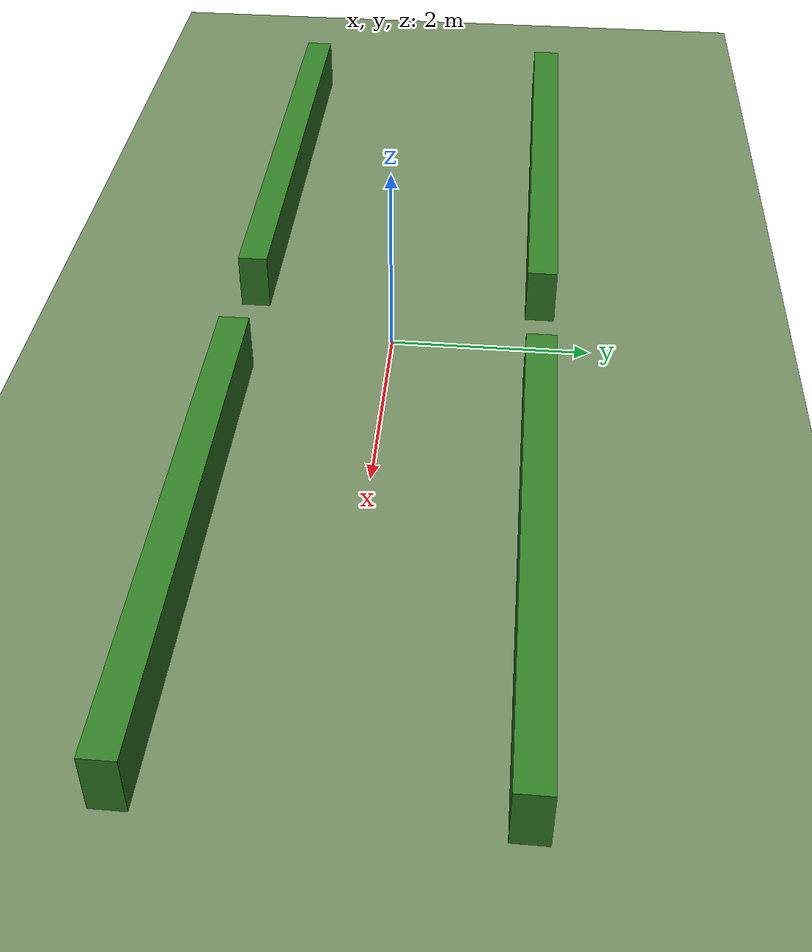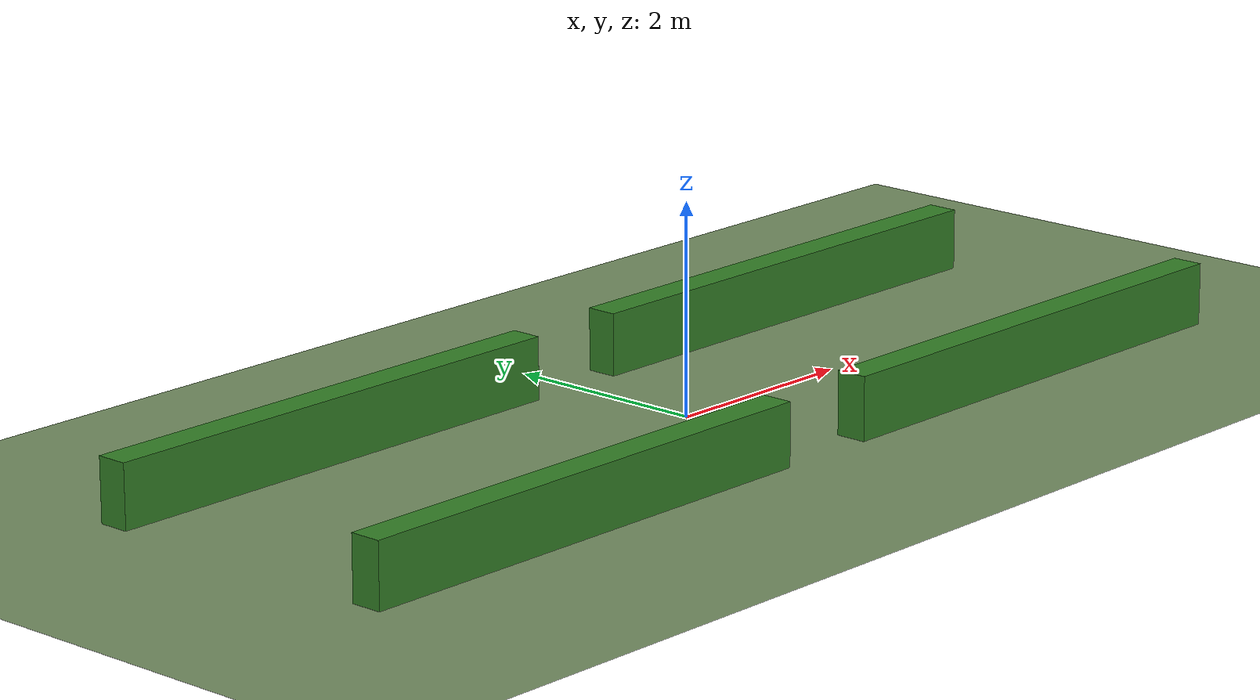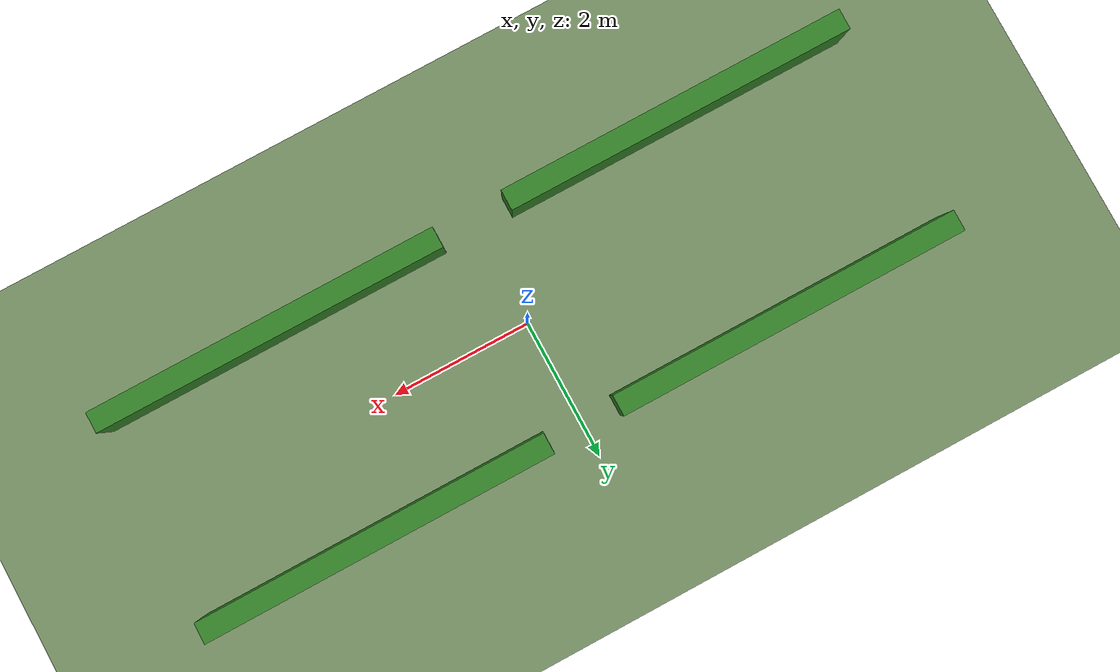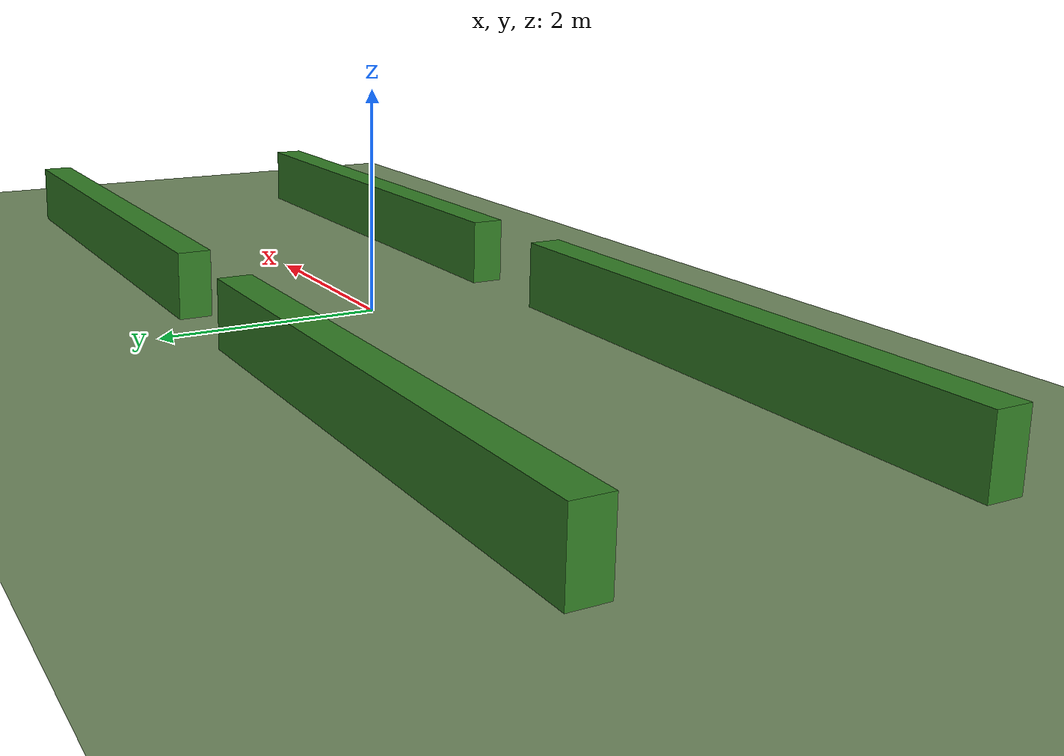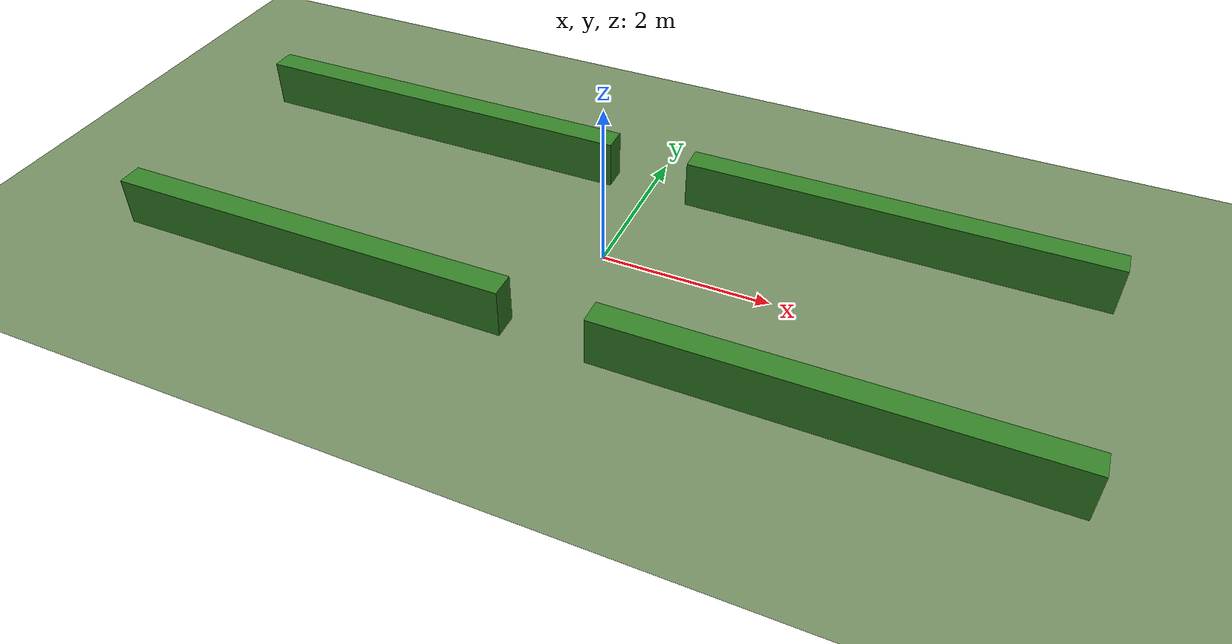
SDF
<?xml version="1.0" ?>
<sdf version="1.6">
  <world name="greenhouse">

    <!-- Fast, deterministic physics for CI. -->
    <physics name="default_physics" default="true" type="ode">
      <max_step_size>0.004</max_step_size>
      <real_time_factor>1.0</real_time_factor>
      <real_time_update_rate>250</real_time_update_rate>
    </physics>

    <scene>
      <ambient>0.5 0.5 0.5 1</ambient>
      <background>0.75 0.85 0.9 1</background>
      <shadows>0</shadows>
    </scene>

    <!-- Sun (inline directional light, no model:// fetch). -->
    <light name="sun" type="directional">
      <cast_shadows>0</cast_shadows>
      <pose>0 0 10 0 0 0</pose>
      <diffuse>0.8 0.8 0.8 1</diffuse>
      <specular>0.2 0.2 0.2 1</specular>
      <attenuation>
        <range>1000</range>
        <constant>0.9</constant>
        <linear>0.01</linear>
        <quadratic>0.001</quadratic>
      </attenuation>
      <direction>-0.5 0.1 -0.9</direction>
    </light>

    <!-- Ground plane (inline, no model:// fetch). -->
    <model name="ground_plane">
      <static>1</static>
      <link name="link">
        <collision name="collision">
          <geometry>
            <plane>
              <normal>0 0 1</normal>
              <size>100 100</size>
            </plane>
          </geometry>
          <surface>
            <friction>
              <ode>
                <mu>100</mu>
                <mu2>50</mu2>
              </ode>
            </friction>
          </surface>
        </collision>
        <visual name="visual">
          <cast_shadows>0</cast_shadows>
          <geometry>
            <plane>
              <normal>0 0 1</normal>
              <size>100 100</size>
            </plane>
          </geometry>
          <material>
            <ambient>0.35 0.45 0.30 1</ambient>
            <diffuse>0.45 0.55 0.38 1</diffuse>
          </material>
        </visual>
      </link>
    </model>

    <model name="crop_row_left_front">
      <static>1</static>
      <pose>3.0 1.5 0.3 0 0 0</pose>
      <link name="link">
        <collision name="collision">
          <geometry><box><size>5.0 0.3 0.6</size></box></geometry>
        </collision>
        <visual name="visual">
          <geometry><box><size>5.0 0.3 0.6</size></box></geometry>
          <material>
            <ambient>0.15 0.35 0.10 1</ambient>
            <diffuse>0.20 0.50 0.15 1</diffuse>
          </material>
        </visual>
      </link>
    </model>

    <model name="crop_row_right_front">
      <static>1</static>
      <pose>3.0 -1.5 0.3 0 0 0</pose>
      <link name="link">
        <collision name="collision">
          <geometry><box><size>5.0 0.3 0.6</size></box></geometry>
        </collision>
        <visual name="visual">
          <geometry><box><size>5.0 0.3 0.6</size></box></geometry>
          <material>
            <ambient>0.15 0.35 0.10 1</ambient>
            <diffuse>0.20 0.50 0.15 1</diffuse>
          </material>
        </visual>
      </link>
    </model>

    <model name="crop_row_left_back">
      <static>1</static>
      <pose>-3.0 1.5 0.3 0 0 0</pose>
      <link name="link">
        <collision name="collision">
          <geometry><box><size>5.0 0.3 0.6</size></box></geometry>
        </collision>
        <visual name="visual">
          <geometry><box><size>5.0 0.3 0.6</size></box></geometry>
          <material>
            <ambient>0.15 0.35 0.10 1</ambient>
            <diffuse>0.20 0.50 0.15 1</diffuse>
          </material>
        </visual>
      </link>
    </model>

    <model name="crop_row_right_back">
      <static>1</static>
      <pose>-3.0 -1.5 0.3 0 0 0</pose>
      <link name="link">
        <collision name="collision">
          <geometry><box><size>5.0 0.3 0.6</size></box></geometry>
        </collision>
        <visual name="visual">
          <geometry><box><size>5.0 0.3 0.6</size></box></geometry>
          <material>
            <ambient>0.15 0.35 0.10 1</ambient>
            <diffuse>0.20 0.50 0.15 1</diffuse>
          </material>
        </visual>
      </link>
    </model>

  </world>
</sdf>
